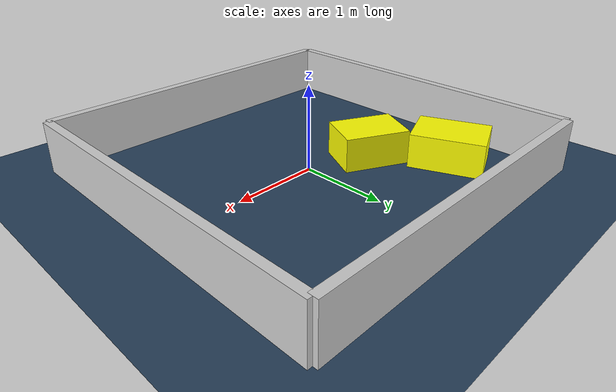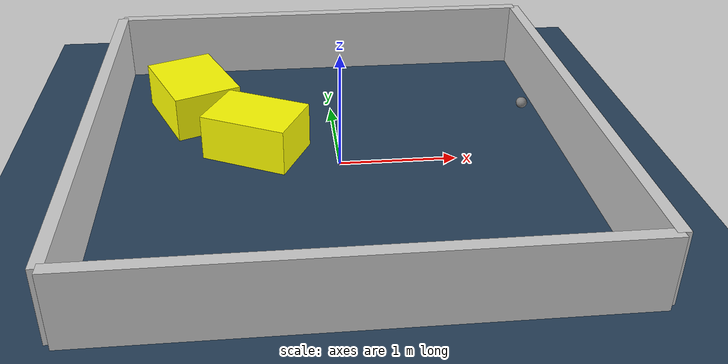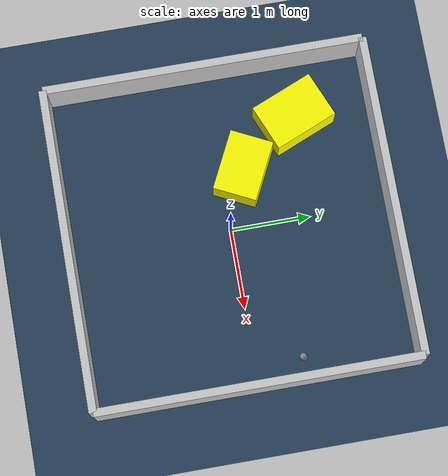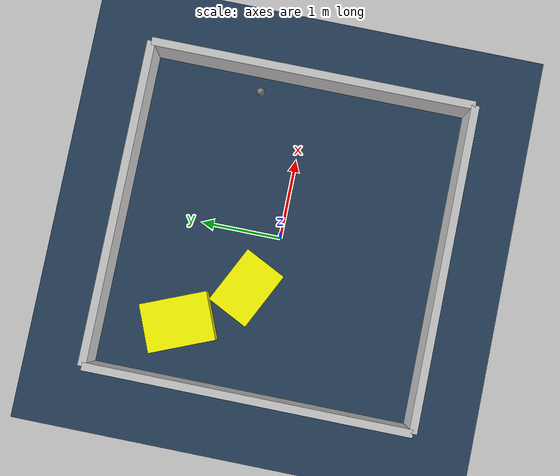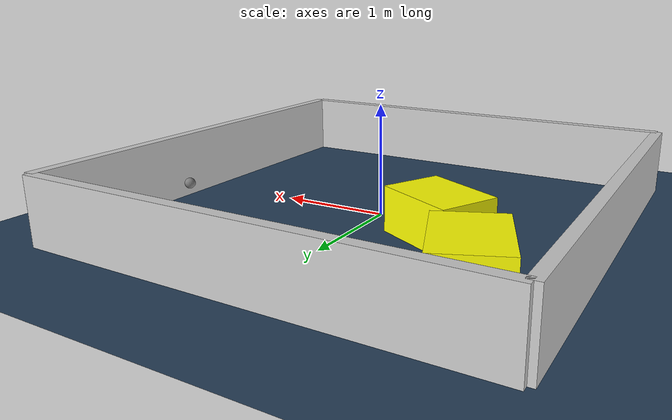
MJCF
<?xml version="1.0" ?>
<mujoco model="generated_environment">
  <option timestep="0.01" integrator="RK4" cone="elliptic"/>
  <default>
    <geom density="1"/>
  </default>
  <asset>
    <texture builtin="gradient" height="3072" rgb1="0.3 0.5 0.7" rgb2="0 0 0" type="skybox" width="512"/>
    <texture builtin="checker" height="300" mark="edge" markrgb="0.8 0.8 0.8" name="groundplane" rgb1="0.2 0.3 0.4" rgb2="0.1 0.2 0.3" type="2d" width="300"/>
    <material name="groundplane" reflectance="0.2" texrepeat="5 5" texture="groundplane" texuniform="true"/>
    <material name="robot" rgba="0.0 1.0 0.0 1"/>
  </asset>
  <worldbody>
    <light dir="0 0 -1" directional="true" pos="0 0 1.5"/>
    <geom condim="4" friction="1.0 0.005 0.001" material="groundplane" name="floor" size="0 0 0.05" type="plane"/>
    <body name="walls">
      <geom name="wall_1" condim="4" pos="-2.0 0.0 0.3" rgba="0.800000011920929 0.800000011920929 0.800000011920929 1.0" size="0.05 2.0 0.3" type="box"/>
      <geom name="wall_2" condim="4" pos="2.0 0.0 0.3" rgba="0.800000011920929 0.800000011920929 0.800000011920929 1.0" size="0.05 2.0 0.3" type="box"/>
      <geom name="wall_3" condim="4" pos="0.0 -2.0 0.3" rgba="0.800000011920929 0.800000011920929 0.800000011920929 1.0" size="2.0 0.05 0.3" type="box"/>
      <geom name="wall_4" condim="4" pos="0.0 2.0 0.3" rgba="0.800000011920929 0.800000011920929 0.800000011920929 1.0" size="2.0 0.05 0.3" type="box"/>
    </body>
    <body name="robot">
      <joint name="joint_x" type="slide" pos="0 0 0" axis="1 0 0"/>
      <joint name="joint_y" type="slide" pos="0 0 0" axis="0 1 0"/>
      <geom name="robot" type="sphere" pos="1.7304073418399786 0.5953467531552676 0.2" size="0.05" mass="5." friction="1.0 0.005 0.0001" condim="4"/>
      <site name="sensor_ball"/>
    </body>
    <body name="obstacle_1_movable">
      <geom name="obstacle_1_movable" condim="4" pos="-1.271229741991404 1.0149838591109501 0.2" euler="0 0 112.53051694916067" friction="1.0 0.005 0.001" rgba="1 1 0 1" size="0.41518622407787914 0.30151690896352196 0.2" type="box" mass="0.1"/>
      <joint type="free"/>
    </body>
    <body name="obstacle_2_movable">
      <geom name="obstacle_2_movable" condim="4" pos="-0.7001317318629363 0.2777680511470386 0.2" euler="0 0 63.66113052003681" friction="1.0 0.005 0.001" rgba="1 1 0 1" size="0.274354837102343 0.3834335880646965 0.2" type="box" mass="0.1"/>
      <joint type="free"/>
    </body>
  </worldbody>
  <actuator>
    <motor name="actuator_x" joint="joint_x" gear="1" ctrlrange="-1 1"/>
    <motor name="actuator_y" joint="joint_y" gear="1" ctrlrange="-1 1"/>
  </actuator>
</mujoco>
